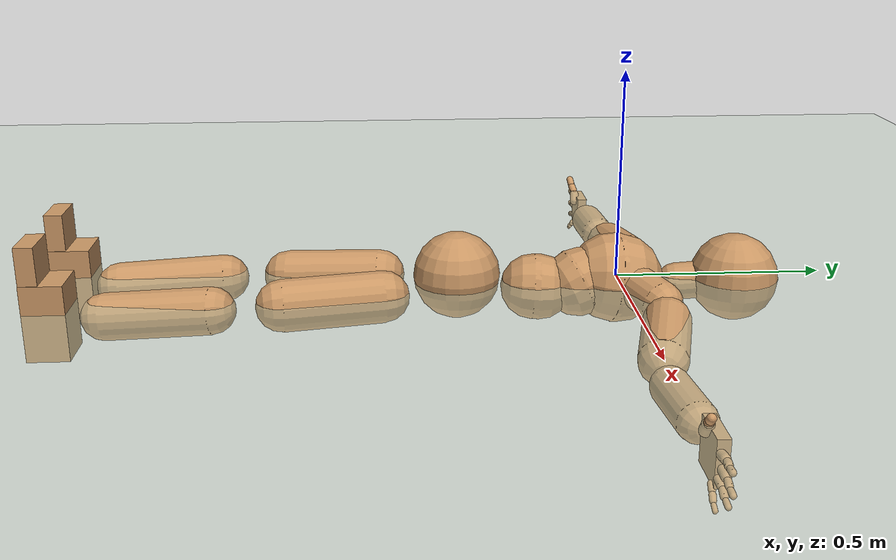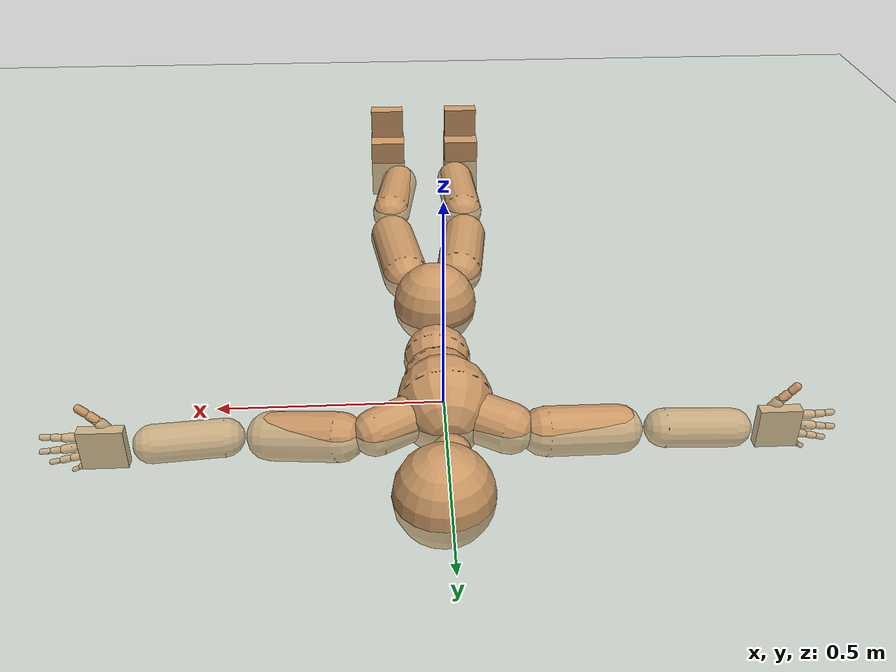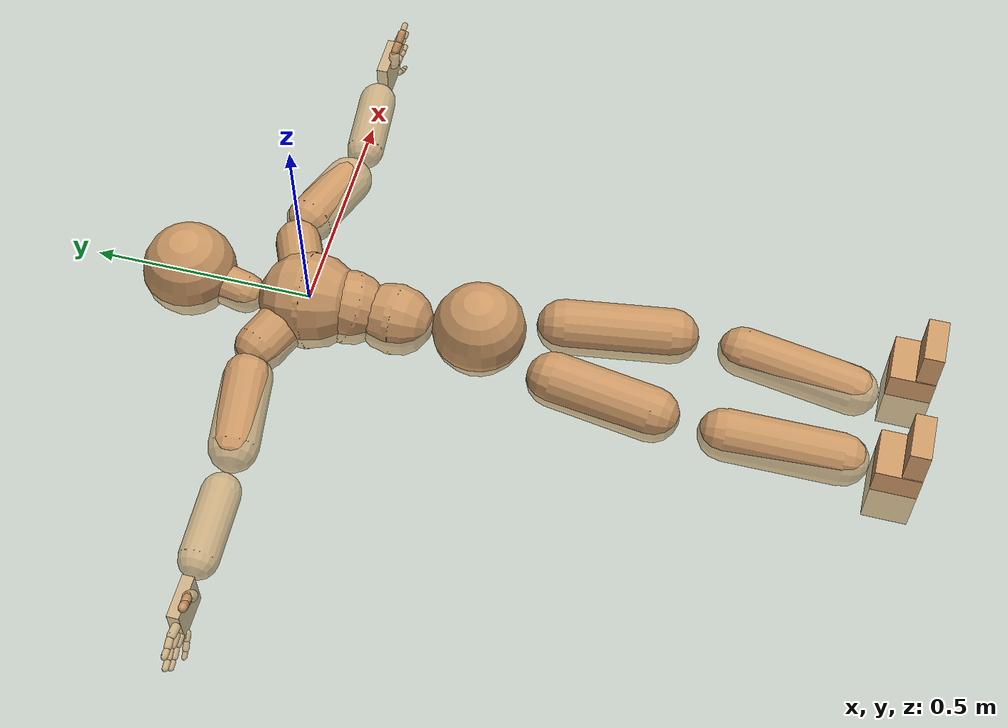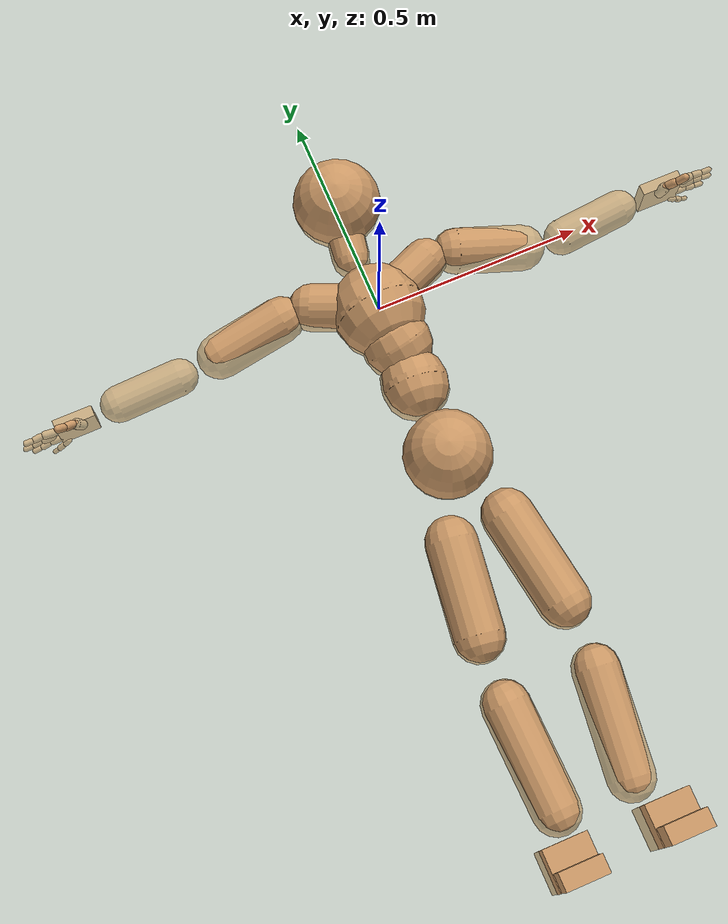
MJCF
<mujoco model="humanoid">
  <compiler coordinate="local"/>
  <default>
    <joint damping="0.0" armature="0.01" stiffness="0.0" limited="true"/>
    <geom conaffinity="1" condim="3" contype="7" margin="0.001" rgba="0.8 0.6 .4 1"/>
  </default>
  <asset>
    <texture type="skybox" builtin="gradient" rgb1=".4 .5 .6" rgb2="0 0 0" width="100" height="100"/>
    <texture builtin="flat" height="1278" mark="cross" markrgb="1 1 1" name="texgeom" random="0.01" rgb1="0.8 0.6 0.4" rgb2="0.8 0.6 0.4" type="cube" width="127"/>
    <texture builtin="checker" height="100" name="texplane" rgb1="0 0 0" rgb2="0.8 0.8 0.8" type="2d" width="100"/>
    <material name="MatPlane" reflectance="0.5" shininess="1" specular="1" texrepeat="60 60" texture="texplane"/>
    <material name="geom" texture="texgeom" texuniform="true"/>
  </asset>
  <worldbody>
    <light cutoff="100" diffuse="1 1 1" dir="-0 0 -1.3" directional="true" exponent="1" pos="0 0 1.3" specular=".1 .1 .1"/>
    <geom conaffinity="1" condim="3" name="floor" pos="0 0 0" rgba="0.8 0.9 0.8 1" size="100 100 .2" type="plane" material="MatPlane"/>
    <body name="Pelvis" pos="0.0029 -0.3901 0.0123">
      <freejoint name="Pelvis"/>
      <geom type="sphere" contype="1" conaffinity="1" density="4629.6296296296305" size="0.1045" pos="0.0000 0.0000 0.0000" name="Pelvis"/>
      <body name="L_Hip" pos="0.0585 -0.0991 -0.0253">
        <joint name="L_Hip_x" type="hinge" pos="0 0 0" axis="1 0 0" user="250 2.5 1 500 10 2" armature="0.01" range="-90.0000 90.0000" damping="0" stiffness="0"/>
        <joint name="L_Hip_y" type="hinge" pos="0 0 0" axis="0 1 0" user="250 2.5 1 500 10 2" armature="0.01" range="-90.0000 90.0000" damping="0" stiffness="0"/>
        <joint name="L_Hip_z" type="hinge" pos="0 0 0" axis="0 0 1" user="250 2.5 1 500 10 2" armature="0.01" range="-90.0000 90.0000" damping="0" stiffness="0"/>
        <geom type="capsule" contype="1" conaffinity="1" density="2040.816327" fromto="0.0119 -0.0780 -0.0009 0.0478 -0.3119 -0.0036" size="0.0619" name="L_Hip"/>
        <body name="L_Knee" pos="0.0597 -0.3899 -0.0044">
          <joint name="L_Knee_x" type="hinge" pos="0 0 0" axis="1 0 0" user="250 2.5 1 500 10 2" armature="0.01" range="-180.0000 180.0000" damping="0" stiffness="0"/>
          <joint name="L_Knee_y" type="hinge" pos="0 0 0" axis="0 1 0" user="250 2.5 1 500 10 2" armature="0.01" range="-5.6250 5.6250" damping="0" stiffness="0"/>
          <joint name="L_Knee_z" type="hinge" pos="0 0 0" axis="0 0 1" user="250 2.5 1 500 10 2" armature="0.01" range="-5.6250 5.6250" damping="0" stiffness="0"/>
          <geom type="capsule" contype="1" conaffinity="1" density="1234.567901" fromto="-0.0090 -0.0831 -0.0065 -0.0359 -0.3326 -0.0258" size="0.0558" name="L_Knee"/>
          <body name="L_Ankle" pos="-0.0449 -0.4157 -0.0323">
            <joint name="L_Ankle_x" type="hinge" pos="0 0 0" axis="1 0 0" user="150 2.5 1 500 10 2" armature="0.01" range="-90.0000 90.0000" damping="0" stiffness="0"/>
            <joint name="L_Ankle_y" type="hinge" pos="0 0 0" axis="0 1 0" user="150 2.5 1 500 10 2" armature="0.01" range="-90.0000 90.0000" damping="0" stiffness="0"/>
            <joint name="L_Ankle_z" type="hinge" pos="0 0 0" axis="0 0 1" user="150 2.5 1 500 10 2" armature="0.01" range="-90.0000 90.0000" damping="0" stiffness="0"/>
            <geom type="box" density="454.944855" pos="0.0439 -0.0300 0.0250" size="0.0533 0.049 0.0909" quat="1.0000 0.0000 0.0000 0.0000" name="L_Ankle"/>
            <body name="L_Toe" pos="0.0508 -0.0606 0.1257">
              <joint name="L_Toe_x" type="hinge" pos="0 0 0" axis="1 0 0" user="150 1 1 500 1 1" armature="0.01" range="-90.0000 90.0000" damping="0" stiffness="0"/>
              <joint name="L_Toe_y" type="hinge" pos="0 0 0" axis="0 1 0" user="150 1 1 500 1 1" armature="0.01" range="-45.0000 45.0000" damping="0" stiffness="0"/>
              <joint name="L_Toe_z" type="hinge" pos="0 0 0" axis="0 0 1" user="150 1 1 500 1 1" armature="0.01" range="-45.0000 45.0000" damping="0" stiffness="0"/>
              <geom type="box" density="422.823769" pos="-0.0069 0.0035 0.0274" size="0.051 0.0218 0.0529" quat="1.0000 0.0000 0.0000 0.0000" name="L_Toe"/>
            </body>
          </body>
        </body>
      </body>
      <body name="R_Hip" pos="-0.0633 -0.1121 -0.019">
        <joint name="R_Hip_x" type="hinge" pos="0 0 0" axis="1 0 0" user="250 2.5 1 500 10 2" armature="0.01" range="-90.0000 90.0000" damping="0" stiffness="0"/>
        <joint name="R_Hip_y" type="hinge" pos="0 0 0" axis="0 1 0" user="250 2.5 1 500 10 2" armature="0.01" range="-90.0000 90.0000" damping="0" stiffness="0"/>
        <joint name="R_Hip_z" type="hinge" pos="0 0 0" axis="0 0 1" user="250 2.5 1 500 10 2" armature="0.01" range="-90.0000 90.0000" damping="0" stiffness="0"/>
        <geom type="capsule" contype="1" conaffinity="1" density="2040.816327" fromto="-0.0098 -0.0742 -0.0027 -0.0390 -0.2970 -0.0106" size="0.0612" name="R_Hip"/>
        <body name="R_Knee" pos="-0.0488 -0.3712 -0.0133">
          <joint name="R_Knee_x" type="hinge" pos="0 0 0" axis="1 0 0" user="250 2.5 1 500 10 2" armature="0.01" range="-180.0000 180.0000" damping="0" stiffness="0"/>
          <joint name="R_Knee_y" type="hinge" pos="0 0 0" axis="0 1 0" user="250 2.5 1 500 10 2" armature="0.01" range="-5.6250 5.6250" damping="0" stiffness="0"/>
          <joint name="R_Knee_z" type="hinge" pos="0 0 0" axis="0 0 1" user="250 2.5 1 500 10 2" armature="0.01" range="-5.6250 5.6250" damping="0" stiffness="0"/>
          <geom type="capsule" contype="1" conaffinity="1" density="1234.567901" fromto="0.0030 -0.0848 -0.0040 0.0120 -0.3392 -0.0160" size="0.0575" name="R_Knee"/>
          <body name="R_Ankle" pos="0.015 -0.424 -0.02">
            <joint name="R_Ankle_x" type="hinge" pos="0 0 0" axis="1 0 0" user="150 1 1 500 10 2" armature="0.01" range="-90.0000 90.0000" damping="0" stiffness="0"/>
            <joint name="R_Ankle_y" type="hinge" pos="0 0 0" axis="0 1 0" user="150 1 1 500 10 2" armature="0.01" range="-90.0000 90.0000" damping="0" stiffness="0"/>
            <joint name="R_Ankle_z" type="hinge" pos="0 0 0" axis="0 0 1" user="150 1 1 500 10 2" armature="0.01" range="-90.0000 90.0000" damping="0" stiffness="0"/>
            <geom type="box" density="454.941528" pos="-0.0259 -0.0273 0.0153" size="0.0533 0.049 0.0909" quat="1.0000 0.0000 0.0000 0.0000" name="R_Ankle"/>
            <body name="R_Toe" pos="-0.0413 -0.0607 0.1264">
              <joint name="R_Toe_x" type="hinge" pos="0 0 0" axis="1 0 0" user="150 1 1 500 1 1" armature="0.01" range="-90.0000 90.0000" damping="0" stiffness="0"/>
              <joint name="R_Toe_y" type="hinge" pos="0 0 0" axis="0 1 0" user="150 1 1 500 1 1" armature="0.01" range="-45.0000 45.0000" damping="0" stiffness="0"/>
              <joint name="R_Toe_z" type="hinge" pos="0 0 0" axis="0 0 1" user="150 1 1 500 1 1" armature="0.01" range="-45.0000 45.0000" damping="0" stiffness="0"/>
              <geom type="box" density="422.820186" pos="0.0154 0.0063 0.0169" size="0.051 0.0218 0.0529" quat="1.0000 0.0000 0.0000 0.0000" name="R_Toe"/>
            </body>
          </body>
        </body>
      </body>
      <body name="Torso" pos="-0.003 0.1187 -0.0312">
        <joint name="Torso_x" type="hinge" pos="0 0 0" axis="1 0 0" user="500 5 1 500 10 2" armature="0.01" range="-60.0000 60.0000" damping="0" stiffness="0"/>
        <joint name="Torso_y" type="hinge" pos="0 0 0" axis="0 1 0" user="500 5 1 500 10 2" armature="0.01" range="-60.0000 60.0000" damping="0" stiffness="0"/>
        <joint name="Torso_z" type="hinge" pos="0 0 0" axis="0 0 1" user="500 5 1 500 10 2" armature="0.01" range="-60.0000 60.0000" damping="0" stiffness="0"/>
        <geom type="capsule" contype="1" conaffinity="1" density="2040.816327" fromto="0.0050 0.0673 -0.0032 0.0061 0.0822 -0.0039" size="0.0797" name="Torso"/>
        <body name="Spine" pos="0.0111 0.1495 -0.0071">
          <joint name="Spine_x" type="hinge" pos="0 0 0" axis="1 0 0" user="500 5 1 500 10 2" armature="0.01" range="-60.0000 60.0000" damping="0" stiffness="0"/>
          <joint name="Spine_y" type="hinge" pos="0 0 0" axis="0 1 0" user="500 5 1 500 10 2" armature="0.01" range="-60.0000 60.0000" damping="0" stiffness="0"/>
          <joint name="Spine_z" type="hinge" pos="0 0 0" axis="0 0 1" user="500 5 1 500 10 2" armature="0.01" range="-60.0000 60.0000" damping="0" stiffness="0"/>
          <geom type="capsule" contype="1" conaffinity="1" density="2040.816327" fromto="-0.0053 0.0270 0.0123 -0.0065 0.0330 0.0150" size="0.0835" name="Spine"/>
          <body name="Chest" pos="-0.0119 0.06 0.0273">
            <joint name="Chest_x" type="hinge" pos="0 0 0" axis="1 0 0" user="500 5 1 500 10 2" armature="0.01" range="-60.0000 60.0000" damping="0" stiffness="0"/>
            <joint name="Chest_y" type="hinge" pos="0 0 0" axis="0 1 0" user="500 5 1 500 10 2" armature="0.01" range="-60.0000 60.0000" damping="0" stiffness="0"/>
            <joint name="Chest_z" type="hinge" pos="0 0 0" axis="0 0 1" user="500 5 1 500 10 2" armature="0.01" range="-60.0000 60.0000" damping="0" stiffness="0"/>
            <geom type="capsule" contype="1" conaffinity="1" density="2040.816327" fromto="-0.0025 0.0537 -0.0065 -0.0030 0.0656 -0.0079" size="0.1091" name="Chest"/>
            <body name="Neck" pos="-0.0136 0.1769 -0.028">
              <joint name="Neck_x" type="hinge" pos="0 0 0" axis="1 0 0" user="150 1 1 250 50 4" armature="0.01" range="-180.0000 180.0000" damping="0" stiffness="0"/>
              <joint name="Neck_y" type="hinge" pos="0 0 0" axis="0 1 0" user="150 1 1 250 50 4" armature="0.01" range="-180.0000 180.0000" damping="0" stiffness="0"/>
              <joint name="Neck_z" type="hinge" pos="0 0 0" axis="0 0 1" user="150 1 1 250 50 4" armature="0.01" range="-180.0000 180.0000" damping="0" stiffness="0"/>
              <geom type="capsule" contype="1" conaffinity="1" density="1000" fromto="0.0054 0.0345 0.0044 0.0215 0.1378 0.0176" size="0.0455" name="Neck"/>
              <body name="Head" pos="0.0269 0.1723 0.022">
                <joint name="Head_x" type="hinge" pos="0 0 0" axis="1 0 0" user="150 1 1 250 50 4" armature="0.01" range="-90.0000 90.0000" damping="0" stiffness="0"/>
                <joint name="Head_y" type="hinge" pos="0 0 0" axis="0 1 0" user="150 1 1 250 50 4" armature="0.01" range="-90.0000 90.0000" damping="0" stiffness="0"/>
                <joint name="Head_z" type="hinge" pos="0 0 0" axis="0 0 1" user="150 1 1 250 50 4" armature="0.01" range="-90.0000 90.0000" damping="0" stiffness="0"/>
                <geom type="sphere" contype="1" conaffinity="1" density="1000" size="0.1058" pos="0.0000 0.0000 0.0000" name="Head"/>
              </body>
            </body>
            <body name="L_Thorax" pos="0.0483 0.091 -0.0045">
              <joint name="L_Thorax_x" type="hinge" pos="0 0 0" axis="1 0 0" user="200 2 1 500 50 4" armature="0.01" range="-180.0000 180.0000" damping="0" stiffness="0"/>
              <joint name="L_Thorax_y" type="hinge" pos="0 0 0" axis="0 1 0" user="200 2 1 500 50 4" armature="0.01" range="-180.0000 180.0000" damping="0" stiffness="0"/>
              <joint name="L_Thorax_z" type="hinge" pos="0 0 0" axis="0 0 1" user="200 2 1 500 50 4" armature="0.01" range="-180.0000 180.0000" damping="0" stiffness="0"/>
              <geom type="capsule" contype="1" conaffinity="1" density="1000" fromto="0.0258 0.0117 -0.0032 0.1033 0.0468 -0.0128" size="0.0522" name="L_Thorax"/>
              <body name="L_Shoulder" pos="0.1291 0.0585 -0.016">
                <joint name="L_Shoulder_x" type="hinge" pos="0 0 0" axis="1 0 0" user="200 2 1 500 50 4" armature="0.01" range="-180.0000 180.0000" damping="0" stiffness="0"/>
                <joint name="L_Shoulder_y" type="hinge" pos="0 0 0" axis="0 1 0" user="200 2 1 500 50 4" armature="0.01" range="-180.0000 180.0000" damping="0" stiffness="0"/>
                <joint name="L_Shoulder_z" type="hinge" pos="0 0 0" axis="0 0 1" user="200 2 1 500 50 4" armature="0.01" range="-180.0000 180.0000" damping="0" stiffness="0"/>
                <geom type="capsule" contype="1" conaffinity="1" density="1000" fromto="0.0516 -0.0147 -0.0092 0.2063 -0.0588 -0.0367" size="0.0555" name="L_Shoulder"/>
                <body name="L_Elbow" pos="0.2579 -0.0735 -0.0458">
                  <joint name="L_Elbow_x" type="hinge" pos="0 0 0" axis="1 0 0" user="150 1 1 150 10 2" armature="0.01" range="-720.0000 720.0000" damping="0" stiffness="0"/>
                  <joint name="L_Elbow_y" type="hinge" pos="0 0 0" axis="0 1 0" user="150 1 1 150 10 2" armature="0.01" range="-720.0000 720.0000" damping="0" stiffness="0"/>
                  <joint name="L_Elbow_z" type="hinge" pos="0 0 0" axis="0 0 1" user="150 1 1 150 10 2" armature="0.01" range="-720.0000 720.0000" damping="0" stiffness="0"/>
                  <geom type="capsule" contype="1" conaffinity="1" density="1000" fromto="0.0524 0.0048 0.0002 0.2096 0.0193 0.0008" size="0.0437" name="L_Elbow"/>
                  <body name="L_Wrist" pos="0.262 0.0241 0.001">
                    <joint name="L_Wrist_x" type="hinge" pos="0 0 0" axis="1 0 0" user="100 1 1 150 1 1" armature="0.01" range="-180.0000 180.0000" damping="0" stiffness="0"/>
                    <joint name="L_Wrist_y" type="hinge" pos="0 0 0" axis="0 1 0" user="100 1 1 150 1 1" armature="0.01" range="-180.0000 180.0000" damping="0" stiffness="0"/>
                    <joint name="L_Wrist_z" type="hinge" pos="0 0 0" axis="0 0 1" user="100 1 1 150 1 1" armature="0.01" range="-180.0000 180.0000" damping="0" stiffness="0"/>
                    <geom type="box" density="1217.913374" pos="0.0553 -0.0014 -0.0027" size="0.051 0.0133 0.0498" quat="1.0000 0.0000 0.0000 0.0000" name="L_Wrist"/>
                    <body name="L_Index1" pos="0.1074 -0.0082 0.0214">
                      <joint name="L_Index1_x" type="hinge" pos="0 0 0" axis="1 0 0" user="100 10 1 150" armature="0.01" range="-180.0000 180.0000" damping="0" stiffness="0"/>
                      <joint name="L_Index1_y" type="hinge" pos="0 0 0" axis="0 1 0" user="100 10 1 150" armature="0.01" range="-180.0000 180.0000" damping="0" stiffness="0"/>
                      <joint name="L_Index1_z" type="hinge" pos="0 0 0" axis="0 0 1" user="100 10 1 150" armature="0.01" range="-180.0000 180.0000" damping="0" stiffness="0"/>
                      <geom type="capsule" contype="1" conaffinity="1" density="1000" fromto="0.0067 0.0005 0.0006 0.0267 0.0020 0.0024" size="0.0099" name="L_Index1"/>
                      <body name="L_Index2" pos="0.0333 0.0025 0.003">
                        <joint name="L_Index2_x" type="hinge" pos="0 0 0" axis="1 0 0" user="100 10 1 150" armature="0.01" range="-180.0000 180.0000" damping="0" stiffness="0"/>
                        <joint name="L_Index2_y" type="hinge" pos="0 0 0" axis="0 1 0" user="100 10 1 150" armature="0.01" range="-180.0000 180.0000" damping="0" stiffness="0"/>
                        <joint name="L_Index2_z" type="hinge" pos="0 0 0" axis="0 0 1" user="100 10 1 150" armature="0.01" range="-180.0000 180.0000" damping="0" stiffness="0"/>
                        <geom type="capsule" contype="1" conaffinity="1" density="1000" fromto="0.0047 -0.0005 -0.0000 0.0188 -0.0020 -0.0002" size="0.0082" name="L_Index2"/>
                        <body name="L_Index3" pos="0.0235 -0.0025 -0.0002">
                          <joint name="L_Index3_x" type="hinge" pos="0 0 0" axis="1 0 0" user="100 10 1 150" armature="0.01" range="-180.0000 180.0000" damping="0" stiffness="0"/>
                          <joint name="L_Index3_y" type="hinge" pos="0 0 0" axis="0 1 0" user="100 10 1 150" armature="0.01" range="-180.0000 180.0000" damping="0" stiffness="0"/>
                          <joint name="L_Index3_z" type="hinge" pos="0 0 0" axis="0 0 1" user="100 10 1 150" armature="0.01" range="-180.0000 180.0000" damping="0" stiffness="0"/>
                          <geom type="capsule" contype="1" conaffinity="1" density="1000" fromto="0.0051 -0.0001 0.0004 0.0204 -0.0004 0.0014" size="0.0069" name="L_Index3"/>
                        </body>
                      </body>
                    </body>
                    <body name="L_Middle1" pos="0.1154 -0.0057 -0.0039">
                      <joint name="L_Middle1_x" type="hinge" pos="0 0 0" axis="1 0 0" user="100 10 1 150" armature="0.01" range="-180.0000 180.0000" damping="0" stiffness="0"/>
                      <joint name="L_Middle1_y" type="hinge" pos="0 0 0" axis="0 1 0" user="100 10 1 150" armature="0.01" range="-180.0000 180.0000" damping="0" stiffness="0"/>
                      <joint name="L_Middle1_z" type="hinge" pos="0 0 0" axis="0 0 1" user="100 10 1 150" armature="0.01" range="-180.0000 180.0000" damping="0" stiffness="0"/>
                      <geom type="capsule" contype="1" conaffinity="1" density="1000" fromto="0.0064 0.0002 -0.0008 0.0256 0.0007 -0.0033" size="0.0102" name="L_Middle1"/>
                      <body name="L_Middle2" pos="0.032 0.0009 -0.0042">
                        <joint name="L_Middle2_x" type="hinge" pos="0 0 0" axis="1 0 0" user="100 10 1 150" armature="0.01" range="-180.0000 180.0000" damping="0" stiffness="0"/>
                        <joint name="L_Middle2_y" type="hinge" pos="0 0 0" axis="0 1 0" user="100 10 1 150" armature="0.01" range="-180.0000 180.0000" damping="0" stiffness="0"/>
                        <joint name="L_Middle2_z" type="hinge" pos="0 0 0" axis="0 0 1" user="100 10 1 150" armature="0.01" range="-180.0000 180.0000" damping="0" stiffness="0"/>
                        <geom type="capsule" contype="1" conaffinity="1" density="1000" fromto="0.0049 -0.0005 -0.0009 0.0195 -0.0018 -0.0035" size="0.0075" name="L_Middle2"/>
                        <body name="L_Middle3" pos="0.0244 -0.0023 -0.0044">
                          <joint name="L_Middle3_x" type="hinge" pos="0 0 0" axis="1 0 0" user="100 10 1 150" armature="0.01" range="-180.0000 180.0000" damping="0" stiffness="0"/>
                          <joint name="L_Middle3_y" type="hinge" pos="0 0 0" axis="0 1 0" user="100 10 1 150" armature="0.01" range="-180.0000 180.0000" damping="0" stiffness="0"/>
                          <joint name="L_Middle3_z" type="hinge" pos="0 0 0" axis="0 0 1" user="100 10 1 150" armature="0.01" range="-180.0000 180.0000" damping="0" stiffness="0"/>
                          <geom type="capsule" contype="1" conaffinity="1" density="1000" fromto="0.0053 -0.0001 -0.0005 0.0211 -0.0002 -0.0019" size="0.0065" name="L_Middle3"/>
                        </body>
                      </body>
                    </body>
                    <body name="L_Pinky1" pos="0.0887 -0.0147 -0.0471">
                      <joint name="L_Pinky1_x" type="hinge" pos="0 0 0" axis="1 0 0" user="100 10 1 150" armature="0.01" range="-180.0000 180.0000" damping="0" stiffness="0"/>
                      <joint name="L_Pinky1_y" type="hinge" pos="0 0 0" axis="0 1 0" user="100 10 1 150" armature="0.01" range="-180.0000 180.0000" damping="0" stiffness="0"/>
                      <joint name="L_Pinky1_z" type="hinge" pos="0 0 0" axis="0 0 1" user="100 10 1 150" armature="0.01" range="-180.0000 180.0000" damping="0" stiffness="0"/>
                      <geom type="capsule" contype="1" conaffinity="1" density="1000" fromto="0.0033 -0.0003 -0.0025 0.0134 -0.0011 -0.0101" size="0.0072" name="L_Pinky1"/>
                      <body name="L_Pinky2" pos="0.0167 -0.0014 -0.0126">
                        <joint name="L_Pinky2_x" type="hinge" pos="0 0 0" axis="1 0 0" user="100 10 1 150" armature="0.01" range="-180.0000 180.0000" damping="0" stiffness="0"/>
                        <joint name="L_Pinky2_y" type="hinge" pos="0 0 0" axis="0 1 0" user="100 10 1 150" armature="0.01" range="-180.0000 180.0000" damping="0" stiffness="0"/>
                        <joint name="L_Pinky2_z" type="hinge" pos="0 0 0" axis="0 0 1" user="100 10 1 150" armature="0.01" range="-180.0000 180.0000" damping="0" stiffness="0"/>
                        <geom type="capsule" contype="1" conaffinity="1" density="1000" fromto="0.0033 -0.0004 -0.0023 0.0132 -0.0016 -0.0093" size="0.0069" name="L_Pinky2"/>
                        <body name="L_Pinky3" pos="0.0165 -0.002 -0.0116">
                          <joint name="L_Pinky3_x" type="hinge" pos="0 0 0" axis="1 0 0" user="100 10 1 150" armature="0.01" range="-180.0000 180.0000" damping="0" stiffness="0"/>
                          <joint name="L_Pinky3_y" type="hinge" pos="0 0 0" axis="0 1 0" user="100 10 1 150" armature="0.01" range="-180.0000 180.0000" damping="0" stiffness="0"/>
                          <joint name="L_Pinky3_z" type="hinge" pos="0 0 0" axis="0 0 1" user="100 10 1 150" armature="0.01" range="-180.0000 180.0000" damping="0" stiffness="0"/>
                          <geom type="capsule" contype="1" conaffinity="1" density="1000" fromto="0.0037 0.0000 -0.0019 0.0148 0.0000 -0.0077" size="0.0052" name="L_Pinky3"/>
                        </body>
                      </body>
                    </body>
                    <body name="L_Ring1" pos="0.1029 -0.0089 -0.0293">
                      <joint name="L_Ring1_x" type="hinge" pos="0 0 0" axis="1 0 0" user="100 10 1 150" armature="0.01" range="-180.0000 180.0000" damping="0" stiffness="0"/>
                      <joint name="L_Ring1_y" type="hinge" pos="0 0 0" axis="0 1 0" user="100 10 1 150" armature="0.01" range="-180.0000 180.0000" damping="0" stiffness="0"/>
                      <joint name="L_Ring1_z" type="hinge" pos="0 0 0" axis="0 0 1" user="100 10 1 150" armature="0.01" range="-180.0000 180.0000" damping="0" stiffness="0"/>
                      <geom type="capsule" contype="1" conaffinity="1" density="1000" fromto="0.0059 0.0003 -0.0011 0.0238 0.0013 -0.0044" size="0.0086" name="L_Ring1"/>
                      <body name="L_Ring2" pos="0.0297 0.0016 -0.0055">
                        <joint name="L_Ring2_x" type="hinge" pos="0 0 0" axis="1 0 0" user="100 10 1 150" armature="0.01" range="-180.0000 180.0000" damping="0" stiffness="0"/>
                        <joint name="L_Ring2_y" type="hinge" pos="0 0 0" axis="0 1 0" user="100 10 1 150" armature="0.01" range="-180.0000 180.0000" damping="0" stiffness="0"/>
                        <joint name="L_Ring2_z" type="hinge" pos="0 0 0" axis="0 0 1" user="100 10 1 150" armature="0.01" range="-180.0000 180.0000" damping="0" stiffness="0"/>
                        <geom type="capsule" contype="1" conaffinity="1" density="1000" fromto="0.0048 -0.0003 -0.0015 0.0191 -0.0014 -0.0059" size="0.0079" name="L_Ring2"/>
                        <body name="L_Ring3" pos="0.0239 -0.0017 -0.0074">
                          <joint name="L_Ring3_x" type="hinge" pos="0 0 0" axis="1 0 0" user="100 10 1 150" armature="0.01" range="-180.0000 180.0000" damping="0" stiffness="0"/>
                          <joint name="L_Ring3_y" type="hinge" pos="0 0 0" axis="0 1 0" user="100 10 1 150" armature="0.01" range="-180.0000 180.0000" damping="0" stiffness="0"/>
                          <joint name="L_Ring3_z" type="hinge" pos="0 0 0" axis="0 0 1" user="100 10 1 150" armature="0.01" range="-180.0000 180.0000" damping="0" stiffness="0"/>
                          <geom type="capsule" contype="1" conaffinity="1" density="1000" fromto="0.0052 0.0001 -0.0011 0.0207 0.0002 -0.0043" size="0.0061" name="L_Ring3"/>
                        </body>
                      </body>
                    </body>
                    <body name="L_Thumb1" pos="0.0425 -0.0194 0.0286">
                      <joint name="L_Thumb1_x" type="hinge" pos="0 0 0" axis="1 0 0" user="100 10 1 150" armature="0.01" range="-180.0000 180.0000" damping="0" stiffness="0"/>
                      <joint name="L_Thumb1_y" type="hinge" pos="0 0 0" axis="0 1 0" user="100 10 1 150" armature="0.01" range="-180.0000 180.0000" damping="0" stiffness="0"/>
                      <joint name="L_Thumb1_z" type="hinge" pos="0 0 0" axis="0 0 1" user="100 10 1 150" armature="0.01" range="-180.0000 180.0000" damping="0" stiffness="0"/>
                      <geom type="capsule" contype="1" conaffinity="1" density="1000" fromto="0.0036 0.0003 0.0054 0.0142 0.0011 0.0217" size="0.0131" name="L_Thumb1"/>
                      <body name="L_Thumb2" pos="0.0178 0.0013 0.0271">
                        <joint name="L_Thumb2_x" type="hinge" pos="0 0 0" axis="1 0 0" user="100 10 1 150" armature="0.01" range="-180.0000 180.0000" damping="0" stiffness="0"/>
                        <joint name="L_Thumb2_y" type="hinge" pos="0 0 0" axis="0 1 0" user="100 10 1 150" armature="0.01" range="-180.0000 180.0000" damping="0" stiffness="0"/>
                        <joint name="L_Thumb2_z" type="hinge" pos="0 0 0" axis="0 0 1" user="100 10 1 150" armature="0.01" range="-180.0000 180.0000" damping="0" stiffness="0"/>
                        <geom type="capsule" contype="1" conaffinity="1" density="1000" fromto="0.0043 -0.0011 0.0033 0.0172 -0.0044 0.0132" size="0.0104" name="L_Thumb2"/>
                        <body name="L_Thumb3" pos="0.0215 -0.0055 0.0165">
                          <joint name="L_Thumb3_x" type="hinge" pos="0 0 0" axis="1 0 0" user="100 10 1 150" armature="0.01" range="-180.0000 180.0000" damping="0" stiffness="0"/>
                          <joint name="L_Thumb3_y" type="hinge" pos="0 0 0" axis="0 1 0" user="100 10 1 150" armature="0.01" range="-180.0000 180.0000" damping="0" stiffness="0"/>
                          <joint name="L_Thumb3_z" type="hinge" pos="0 0 0" axis="0 0 1" user="100 10 1 150" armature="0.01" range="-180.0000 180.0000" damping="0" stiffness="0"/>
                          <geom type="capsule" contype="1" conaffinity="1" density="1000" fromto="0.0047 -0.0007 0.0037 0.0188 -0.0028 0.0148" size="0.0094" name="L_Thumb3"/>
                        </body>
                      </body>
                    </body>
                  </body>
                </body>
              </body>
            </body>
            <body name="R_Thorax" pos="-0.0511 0.0901 -0.0108">
              <joint name="R_Thorax_x" type="hinge" pos="0 0 0" axis="1 0 0" user="200 2 1 150 10 2" armature="0.01" range="-180.0000 180.0000" damping="0" stiffness="0"/>
              <joint name="R_Thorax_y" type="hinge" pos="0 0 0" axis="0 1 0" user="200 2 1 150 10 2" armature="0.01" range="-180.0000 180.0000" damping="0" stiffness="0"/>
              <joint name="R_Thorax_z" type="hinge" pos="0 0 0" axis="0 0 1" user="200 2 1 150 10 2" armature="0.01" range="-180.0000 180.0000" damping="0" stiffness="0"/>
              <geom type="capsule" contype="1" conaffinity="1" density="1000" fromto="-0.0223 0.0108 -0.0027 -0.0893 0.0433 -0.0106" size="0.0573" name="R_Thorax"/>
              <body name="R_Shoulder" pos="-0.1116 0.0542 -0.0133">
                <joint name="R_Shoulder_x" type="hinge" pos="0 0 0" axis="1 0 0" user="200 2 1 250 10 2" armature="0.01" range="-180.0000 180.0000" damping="0" stiffness="0"/>
                <joint name="R_Shoulder_y" type="hinge" pos="0 0 0" axis="0 1 0" user="200 2 1 250 10 2" armature="0.01" range="-180.0000 180.0000" damping="0" stiffness="0"/>
                <joint name="R_Shoulder_z" type="hinge" pos="0 0 0" axis="0 0 1" user="200 2 1 250 10 2" armature="0.01" range="-180.0000 180.0000" damping="0" stiffness="0"/>
                <geom type="capsule" contype="1" conaffinity="1" density="1000" fromto="-0.0552 -0.0070 -0.0058 -0.2208 -0.0282 -0.0232" size="0.0554" name="R_Shoulder"/>
                <body name="R_Elbow" pos="-0.276 -0.0352 -0.029">
                  <joint name="R_Elbow_x" type="hinge" pos="0 0 0" axis="1 0 0" user="150 1 1 150 10 2" armature="0.01" range="-720.0000 720.0000" damping="0" stiffness="0"/>
                  <joint name="R_Elbow_y" type="hinge" pos="0 0 0" axis="0 1 0" user="150 1 1 150 10 2" armature="0.01" range="-720.0000 720.0000" damping="0" stiffness="0"/>
                  <joint name="R_Elbow_z" type="hinge" pos="0 0 0" axis="0 0 1" user="150 1 1 150 10 2" armature="0.01" range="-720.0000 720.0000" damping="0" stiffness="0"/>
                  <geom type="capsule" contype="1" conaffinity="1" density="1000" fromto="-0.0517 -0.0011 -0.0025 -0.2070 -0.0045 -0.0100" size="0.044" name="R_Elbow"/>
                  <body name="R_Wrist" pos="-0.2587 -0.0057 -0.0124">
                    <joint name="R_Wrist_x" type="hinge" pos="0 0 0" axis="1 0 0" user="100 1 1 150 1 1" armature="0.01" range="-180.0000 180.0000" damping="0" stiffness="0"/>
                    <joint name="R_Wrist_y" type="hinge" pos="0 0 0" axis="0 1 0" user="100 1 1 150 1 1" armature="0.01" range="-180.0000 180.0000" damping="0" stiffness="0"/>
                    <joint name="R_Wrist_z" type="hinge" pos="0 0 0" axis="0 0 1" user="100 1 1 150 1 1" armature="0.01" range="-180.0000 180.0000" damping="0" stiffness="0"/>
                    <geom type="box" density="1243.677563" pos="-0.0566 -0.0047 -0.0026" size="0.0481 0.0133 0.0498" quat="1.0000 0.0000 0.0000 0.0000" name="R_Wrist"/>
                    <body name="R_Index1" pos="-0.1054 -0.0115 0.0215">
                      <joint name="R_Index1_x" type="hinge" pos="0 0 0" axis="1 0 0" user="100 10 1 150" armature="0.01" range="-180.0000 180.0000" damping="0" stiffness="0"/>
                      <joint name="R_Index1_y" type="hinge" pos="0 0 0" axis="0 1 0" user="100 10 1 150" armature="0.01" range="-180.0000 180.0000" damping="0" stiffness="0"/>
                      <joint name="R_Index1_z" type="hinge" pos="0 0 0" axis="0 0 1" user="100 10 1 150" armature="0.01" range="-180.0000 180.0000" damping="0" stiffness="0"/>
                      <geom type="capsule" contype="1" conaffinity="1" density="1000" fromto="-0.0067 0.0005 0.0006 -0.0267 0.0020 0.0024" size="0.0099" name="R_Index1"/>
                      <body name="R_Index2" pos="-0.0333 0.0025 0.003">
                        <joint name="R_Index2_x" type="hinge" pos="0 0 0" axis="1 0 0" user="100 10 1 150" armature="0.01" range="-180.0000 180.0000" damping="0" stiffness="0"/>
                        <joint name="R_Index2_y" type="hinge" pos="0 0 0" axis="0 1 0" user="100 10 1 150" armature="0.01" range="-180.0000 180.0000" damping="0" stiffness="0"/>
                        <joint name="R_Index2_z" type="hinge" pos="0 0 0" axis="0 0 1" user="100 10 1 150" armature="0.01" range="-180.0000 180.0000" damping="0" stiffness="0"/>
                        <geom type="capsule" contype="1" conaffinity="1" density="1000" fromto="-0.0047 -0.0005 -0.0000 -0.0188 -0.0020 -0.0002" size="0.0082" name="R_Index2"/>
                        <body name="R_Index3" pos="-0.0235 -0.0025 -0.0002">
                          <joint name="R_Index3_x" type="hinge" pos="0 0 0" axis="1 0 0" user="100 10 1 150" armature="0.01" range="-180.0000 180.0000" damping="0" stiffness="0"/>
                          <joint name="R_Index3_y" type="hinge" pos="0 0 0" axis="0 1 0" user="100 10 1 150" armature="0.01" range="-180.0000 180.0000" damping="0" stiffness="0"/>
                          <joint name="R_Index3_z" type="hinge" pos="0 0 0" axis="0 0 1" user="100 10 1 150" armature="0.01" range="-180.0000 180.0000" damping="0" stiffness="0"/>
                          <geom type="capsule" contype="1" conaffinity="1" density="1000" fromto="-0.0043 -0.0001 0.0004 -0.0172 -0.0004 0.0014" size="0.0072" name="R_Index3"/>
                        </body>
                      </body>
                    </body>
                    <body name="R_Middle1" pos="-0.1134 -0.009 -0.0038">
                      <joint name="R_Middle1_x" type="hinge" pos="0 0 0" axis="1 0 0" user="100 10 1 150" armature="0.01" range="-180.0000 180.0000" damping="0" stiffness="0"/>
                      <joint name="R_Middle1_y" type="hinge" pos="0 0 0" axis="0 1 0" user="100 10 1 150" armature="0.01" range="-180.0000 180.0000" damping="0" stiffness="0"/>
                      <joint name="R_Middle1_z" type="hinge" pos="0 0 0" axis="0 0 1" user="100 10 1 150" armature="0.01" range="-180.0000 180.0000" damping="0" stiffness="0"/>
                      <geom type="capsule" contype="1" conaffinity="1" density="1000" fromto="-0.0064 0.0002 -0.0008 -0.0256 0.0007 -0.0033" size="0.0102" name="R_Middle1"/>
                      <body name="R_Middle2" pos="-0.032 0.0009 -0.0042">
                        <joint name="R_Middle2_x" type="hinge" pos="0 0 0" axis="1 0 0" user="100 10 1 150" armature="0.01" range="-180.0000 180.0000" damping="0" stiffness="0"/>
                        <joint name="R_Middle2_y" type="hinge" pos="0 0 0" axis="0 1 0" user="100 10 1 150" armature="0.01" range="-180.0000 180.0000" damping="0" stiffness="0"/>
                        <joint name="R_Middle2_z" type="hinge" pos="0 0 0" axis="0 0 1" user="100 10 1 150" armature="0.01" range="-180.0000 180.0000" damping="0" stiffness="0"/>
                        <geom type="capsule" contype="1" conaffinity="1" density="1000" fromto="-0.0049 -0.0005 -0.0009 -0.0195 -0.0018 -0.0035" size="0.0075" name="R_Middle2"/>
                        <body name="R_Middle3" pos="-0.0244 -0.0023 -0.0044">
                          <joint name="R_Middle3_x" type="hinge" pos="0 0 0" axis="1 0 0" user="100 10 1 150" armature="0.01" range="-180.0000 180.0000" damping="0" stiffness="0"/>
                          <joint name="R_Middle3_y" type="hinge" pos="0 0 0" axis="0 1 0" user="100 10 1 150" armature="0.01" range="-180.0000 180.0000" damping="0" stiffness="0"/>
                          <joint name="R_Middle3_z" type="hinge" pos="0 0 0" axis="0 0 1" user="100 10 1 150" armature="0.01" range="-180.0000 180.0000" damping="0" stiffness="0"/>
                          <geom type="capsule" contype="1" conaffinity="1" density="1000" fromto="-0.0045 -0.0001 -0.0005 -0.0179 -0.0002 -0.0019" size="0.0068" name="R_Middle3"/>
                        </body>
                      </body>
                    </body>
                    <body name="R_Pinky1" pos="-0.0868 -0.018 -0.0469">
                      <joint name="R_Pinky1_x" type="hinge" pos="0 0 0" axis="1 0 0" user="100 10 1 150" armature="0.01" range="-180.0000 180.0000" damping="0" stiffness="0"/>
                      <joint name="R_Pinky1_y" type="hinge" pos="0 0 0" axis="0 1 0" user="100 10 1 150" armature="0.01" range="-180.0000 180.0000" damping="0" stiffness="0"/>
                      <joint name="R_Pinky1_z" type="hinge" pos="0 0 0" axis="0 0 1" user="100 10 1 150" armature="0.01" range="-180.0000 180.0000" damping="0" stiffness="0"/>
                      <geom type="capsule" contype="1" conaffinity="1" density="1000" fromto="-0.0033 -0.0003 -0.0025 -0.0134 -0.0011 -0.0101" size="0.0072" name="R_Pinky1"/>
                      <body name="R_Pinky2" pos="-0.0167 -0.0014 -0.0126">
                        <joint name="R_Pinky2_x" type="hinge" pos="0 0 0" axis="1 0 0" user="100 10 1 150" armature="0.01" range="-180.0000 180.0000" damping="0" stiffness="0"/>
                        <joint name="R_Pinky2_y" type="hinge" pos="0 0 0" axis="0 1 0" user="100 10 1 150" armature="0.01" range="-180.0000 180.0000" damping="0" stiffness="0"/>
                        <joint name="R_Pinky2_z" type="hinge" pos="0 0 0" axis="0 0 1" user="100 10 1 150" armature="0.01" range="-180.0000 180.0000" damping="0" stiffness="0"/>
                        <geom type="capsule" contype="1" conaffinity="1" density="1000" fromto="-0.0033 -0.0004 -0.0023 -0.0132 -0.0016 -0.0093" size="0.0069" name="R_Pinky2"/>
                        <body name="R_Pinky3" pos="-0.0165 -0.002 -0.0116">
                          <joint name="R_Pinky3_x" type="hinge" pos="0 0 0" axis="1 0 0" user="100 10 1 150" armature="0.01" range="-180.0000 180.0000" damping="0" stiffness="0"/>
                          <joint name="R_Pinky3_y" type="hinge" pos="0 0 0" axis="0 1 0" user="100 10 1 150" armature="0.01" range="-180.0000 180.0000" damping="0" stiffness="0"/>
                          <joint name="R_Pinky3_z" type="hinge" pos="0 0 0" axis="0 0 1" user="100 10 1 150" armature="0.01" range="-180.0000 180.0000" damping="0" stiffness="0"/>
                          <geom type="capsule" contype="1" conaffinity="1" density="1000" fromto="-0.0029 0.0000 -0.0019 -0.0116 0.0000 -0.0077" size="0.0055" name="R_Pinky3"/>
                        </body>
                      </body>
                    </body>
                    <body name="R_Ring1" pos="-0.101 -0.0122 -0.0292">
                      <joint name="R_Ring1_x" type="hinge" pos="0 0 0" axis="1 0 0" user="100 10 1 150" armature="0.01" range="-180.0000 180.0000" damping="0" stiffness="0"/>
                      <joint name="R_Ring1_y" type="hinge" pos="0 0 0" axis="0 1 0" user="100 10 1 150" armature="0.01" range="-180.0000 180.0000" damping="0" stiffness="0"/>
                      <joint name="R_Ring1_z" type="hinge" pos="0 0 0" axis="0 0 1" user="100 10 1 150" armature="0.01" range="-180.0000 180.0000" damping="0" stiffness="0"/>
                      <geom type="capsule" contype="1" conaffinity="1" density="1000" fromto="-0.0059 0.0003 -0.0011 -0.0238 0.0013 -0.0044" size="0.0086" name="R_Ring1"/>
                      <body name="R_Ring2" pos="-0.0297 0.0016 -0.0055">
                        <joint name="R_Ring2_x" type="hinge" pos="0 0 0" axis="1 0 0" user="100 10 1 150" armature="0.01" range="-180.0000 180.0000" damping="0" stiffness="0"/>
                        <joint name="R_Ring2_y" type="hinge" pos="0 0 0" axis="0 1 0" user="100 10 1 150" armature="0.01" range="-180.0000 180.0000" damping="0" stiffness="0"/>
                        <joint name="R_Ring2_z" type="hinge" pos="0 0 0" axis="0 0 1" user="100 10 1 150" armature="0.01" range="-180.0000 180.0000" damping="0" stiffness="0"/>
                        <geom type="capsule" contype="1" conaffinity="1" density="1000" fromto="-0.0048 -0.0003 -0.0015 -0.0191 -0.0014 -0.0059" size="0.0079" name="R_Ring2"/>
                        <body name="R_Ring3" pos="-0.0239 -0.0017 -0.0074">
                          <joint name="R_Ring3_x" type="hinge" pos="0 0 0" axis="1 0 0" user="100 10 1 150" armature="0.01" range="-180.0000 180.0000" damping="0" stiffness="0"/>
                          <joint name="R_Ring3_y" type="hinge" pos="0 0 0" axis="0 1 0" user="100 10 1 150" armature="0.01" range="-180.0000 180.0000" damping="0" stiffness="0"/>
                          <joint name="R_Ring3_z" type="hinge" pos="0 0 0" axis="0 0 1" user="100 10 1 150" armature="0.01" range="-180.0000 180.0000" damping="0" stiffness="0"/>
                          <geom type="capsule" contype="1" conaffinity="1" density="1000" fromto="-0.0044 0.0001 -0.0011 -0.0175 0.0002 -0.0043" size="0.0064" name="R_Ring3"/>
                        </body>
                      </body>
                    </body>
                    <body name="R_Thumb1" pos="-0.0405 -0.0227 0.0288">
                      <joint name="R_Thumb1_x" type="hinge" pos="0 0 0" axis="1 0 0" user="100 10 1 150" armature="0.01" range="-180.0000 180.0000" damping="0" stiffness="0"/>
                      <joint name="R_Thumb1_y" type="hinge" pos="0 0 0" axis="0 1 0" user="100 10 1 150" armature="0.01" range="-180.0000 180.0000" damping="0" stiffness="0"/>
                      <joint name="R_Thumb1_z" type="hinge" pos="0 0 0" axis="0 0 1" user="100 10 1 150" armature="0.01" range="-180.0000 180.0000" damping="0" stiffness="0"/>
                      <geom type="capsule" contype="1" conaffinity="1" density="1000" fromto="-0.0036 0.0003 0.0054 -0.0142 0.0011 0.0217" size="0.0131" name="R_Thumb1"/>
                      <body name="R_Thumb2" pos="-0.0178 0.0013 0.0271">
                        <joint name="R_Thumb2_x" type="hinge" pos="0 0 0" axis="1 0 0" user="100 10 1 150" armature="0.01" range="-180.0000 180.0000" damping="0" stiffness="0"/>
                        <joint name="R_Thumb2_y" type="hinge" pos="0 0 0" axis="0 1 0" user="100 10 1 150" armature="0.01" range="-180.0000 180.0000" damping="0" stiffness="0"/>
                        <joint name="R_Thumb2_z" type="hinge" pos="0 0 0" axis="0 0 1" user="100 10 1 150" armature="0.01" range="-180.0000 180.0000" damping="0" stiffness="0"/>
                        <geom type="capsule" contype="1" conaffinity="1" density="1000" fromto="-0.0043 -0.0011 0.0033 -0.0172 -0.0044 0.0132" size="0.0104" name="R_Thumb2"/>
                        <body name="R_Thumb3" pos="-0.0215 -0.0054 0.0165">
                          <joint name="R_Thumb3_x" type="hinge" pos="0 0 0" axis="1 0 0" user="100 10 1 150" armature="0.01" range="-180.0000 180.0000" damping="0" stiffness="0"/>
                          <joint name="R_Thumb3_y" type="hinge" pos="0 0 0" axis="0 1 0" user="100 10 1 150" armature="0.01" range="-180.0000 180.0000" damping="0" stiffness="0"/>
                          <joint name="R_Thumb3_z" type="hinge" pos="0 0 0" axis="0 0 1" user="100 10 1 150" armature="0.01" range="-180.0000 180.0000" damping="0" stiffness="0"/>
                          <geom type="capsule" contype="1" conaffinity="1" density="1000" fromto="-0.0039 -0.0007 0.0037 -0.0156 -0.0028 0.0148" size="0.0096" name="R_Thumb3"/>
                        </body>
                      </body>
                    </body>
                  </body>
                </body>
              </body>
            </body>
          </body>
        </body>
      </body>
    </body>
  </worldbody>
  <actuator>
    <motor name="L_Hip_x" joint="L_Hip_x" gear="1"/>
    <motor name="L_Hip_y" joint="L_Hip_y" gear="1"/>
    <motor name="L_Hip_z" joint="L_Hip_z" gear="1"/>
    <motor name="L_Knee_x" joint="L_Knee_x" gear="1"/>
    <motor name="L_Knee_y" joint="L_Knee_y" gear="1"/>
    <motor name="L_Knee_z" joint="L_Knee_z" gear="1"/>
    <motor name="L_Ankle_x" joint="L_Ankle_x" gear="1"/>
    <motor name="L_Ankle_y" joint="L_Ankle_y" gear="1"/>
    <motor name="L_Ankle_z" joint="L_Ankle_z" gear="1"/>
    <motor name="L_Toe_x" joint="L_Toe_x" gear="1"/>
    <motor name="L_Toe_y" joint="L_Toe_y" gear="1"/>
    <motor name="L_Toe_z" joint="L_Toe_z" gear="1"/>
    <motor name="R_Hip_x" joint="R_Hip_x" gear="1"/>
    <motor name="R_Hip_y" joint="R_Hip_y" gear="1"/>
    <motor name="R_Hip_z" joint="R_Hip_z" gear="1"/>
    <motor name="R_Knee_x" joint="R_Knee_x" gear="1"/>
    <motor name="R_Knee_y" joint="R_Knee_y" gear="1"/>
    <motor name="R_Knee_z" joint="R_Knee_z" gear="1"/>
    <motor name="R_Ankle_x" joint="R_Ankle_x" gear="1"/>
    <motor name="R_Ankle_y" joint="R_Ankle_y" gear="1"/>
    <motor name="R_Ankle_z" joint="R_Ankle_z" gear="1"/>
    <motor name="R_Toe_x" joint="R_Toe_x" gear="1"/>
    <motor name="R_Toe_y" joint="R_Toe_y" gear="1"/>
    <motor name="R_Toe_z" joint="R_Toe_z" gear="1"/>
    <motor name="Torso_x" joint="Torso_x" gear="1"/>
    <motor name="Torso_y" joint="Torso_y" gear="1"/>
    <motor name="Torso_z" joint="Torso_z" gear="1"/>
    <motor name="Spine_x" joint="Spine_x" gear="1"/>
    <motor name="Spine_y" joint="Spine_y" gear="1"/>
    <motor name="Spine_z" joint="Spine_z" gear="1"/>
    <motor name="Chest_x" joint="Chest_x" gear="1"/>
    <motor name="Chest_y" joint="Chest_y" gear="1"/>
    <motor name="Chest_z" joint="Chest_z" gear="1"/>
    <motor name="Neck_x" joint="Neck_x" gear="1"/>
    <motor name="Neck_y" joint="Neck_y" gear="1"/>
    <motor name="Neck_z" joint="Neck_z" gear="1"/>
    <motor name="Head_x" joint="Head_x" gear="1"/>
    <motor name="Head_y" joint="Head_y" gear="1"/>
    <motor name="Head_z" joint="Head_z" gear="1"/>
    <motor name="L_Thorax_x" joint="L_Thorax_x" gear="1"/>
    <motor name="L_Thorax_y" joint="L_Thorax_y" gear="1"/>
    <motor name="L_Thorax_z" joint="L_Thorax_z" gear="1"/>
    <motor name="L_Shoulder_x" joint="L_Shoulder_x" gear="1"/>
    <motor name="L_Shoulder_y" joint="L_Shoulder_y" gear="1"/>
    <motor name="L_Shoulder_z" joint="L_Shoulder_z" gear="1"/>
    <motor name="L_Elbow_x" joint="L_Elbow_x" gear="1"/>
    <motor name="L_Elbow_y" joint="L_Elbow_y" gear="1"/>
    <motor name="L_Elbow_z" joint="L_Elbow_z" gear="1"/>
    <motor name="L_Wrist_x" joint="L_Wrist_x" gear="1"/>
    <motor name="L_Wrist_y" joint="L_Wrist_y" gear="1"/>
    <motor name="L_Wrist_z" joint="L_Wrist_z" gear="1"/>
    <motor name="L_Index1_x" joint="L_Index1_x" gear="1"/>
    <motor name="L_Index1_y" joint="L_Index1_y" gear="1"/>
    <motor name="L_Index1_z" joint="L_Index1_z" gear="1"/>
    <motor name="L_Index2_x" joint="L_Index2_x" gear="1"/>
    <motor name="L_Index2_y" joint="L_Index2_y" gear="1"/>
    <motor name="L_Index2_z" joint="L_Index2_z" gear="1"/>
    <motor name="L_Index3_x" joint="L_Index3_x" gear="1"/>
    <motor name="L_Index3_y" joint="L_Index3_y" gear="1"/>
    <motor name="L_Index3_z" joint="L_Index3_z" gear="1"/>
    <motor name="L_Middle1_x" joint="L_Middle1_x" gear="1"/>
    <motor name="L_Middle1_y" joint="L_Middle1_y" gear="1"/>
    <motor name="L_Middle1_z" joint="L_Middle1_z" gear="1"/>
    <motor name="L_Middle2_x" joint="L_Middle2_x" gear="1"/>
    <motor name="L_Middle2_y" joint="L_Middle2_y" gear="1"/>
    <motor name="L_Middle2_z" joint="L_Middle2_z" gear="1"/>
    <motor name="L_Middle3_x" joint="L_Middle3_x" gear="1"/>
    <motor name="L_Middle3_y" joint="L_Middle3_y" gear="1"/>
    <motor name="L_Middle3_z" joint="L_Middle3_z" gear="1"/>
    <motor name="L_Pinky1_x" joint="L_Pinky1_x" gear="1"/>
    <motor name="L_Pinky1_y" joint="L_Pinky1_y" gear="1"/>
    <motor name="L_Pinky1_z" joint="L_Pinky1_z" gear="1"/>
    <motor name="L_Pinky2_x" joint="L_Pinky2_x" gear="1"/>
    <motor name="L_Pinky2_y" joint="L_Pinky2_y" gear="1"/>
    <motor name="L_Pinky2_z" joint="L_Pinky2_z" gear="1"/>
    <motor name="L_Pinky3_x" joint="L_Pinky3_x" gear="1"/>
    <motor name="L_Pinky3_y" joint="L_Pinky3_y" gear="1"/>
    <motor name="L_Pinky3_z" joint="L_Pinky3_z" gear="1"/>
    <motor name="L_Ring1_x" joint="L_Ring1_x" gear="1"/>
    <motor name="L_Ring1_y" joint="L_Ring1_y" gear="1"/>
    <motor name="L_Ring1_z" joint="L_Ring1_z" gear="1"/>
    <motor name="L_Ring2_x" joint="L_Ring2_x" gear="1"/>
    <motor name="L_Ring2_y" joint="L_Ring2_y" gear="1"/>
    <motor name="L_Ring2_z" joint="L_Ring2_z" gear="1"/>
    <motor name="L_Ring3_x" joint="L_Ring3_x" gear="1"/>
    <motor name="L_Ring3_y" joint="L_Ring3_y" gear="1"/>
    <motor name="L_Ring3_z" joint="L_Ring3_z" gear="1"/>
    <motor name="L_Thumb1_x" joint="L_Thumb1_x" gear="1"/>
    <motor name="L_Thumb1_y" joint="L_Thumb1_y" gear="1"/>
    <motor name="L_Thumb1_z" joint="L_Thumb1_z" gear="1"/>
    <motor name="L_Thumb2_x" joint="L_Thumb2_x" gear="1"/>
    <motor name="L_Thumb2_y" joint="L_Thumb2_y" gear="1"/>
    <motor name="L_Thumb2_z" joint="L_Thumb2_z" gear="1"/>
    <motor name="L_Thumb3_x" joint="L_Thumb3_x" gear="1"/>
    <motor name="L_Thumb3_y" joint="L_Thumb3_y" gear="1"/>
    <motor name="L_Thumb3_z" joint="L_Thumb3_z" gear="1"/>
    <motor name="R_Thorax_x" joint="R_Thorax_x" gear="1"/>
    <motor name="R_Thorax_y" joint="R_Thorax_y" gear="1"/>
    <motor name="R_Thorax_z" joint="R_Thorax_z" gear="1"/>
    <motor name="R_Shoulder_x" joint="R_Shoulder_x" gear="1"/>
    <motor name="R_Shoulder_y" joint="R_Shoulder_y" gear="1"/>
    <motor name="R_Shoulder_z" joint="R_Shoulder_z" gear="1"/>
    <motor name="R_Elbow_x" joint="R_Elbow_x" gear="1"/>
    <motor name="R_Elbow_y" joint="R_Elbow_y" gear="1"/>
    <motor name="R_Elbow_z" joint="R_Elbow_z" gear="1"/>
    <motor name="R_Wrist_x" joint="R_Wrist_x" gear="1"/>
    <motor name="R_Wrist_y" joint="R_Wrist_y" gear="1"/>
    <motor name="R_Wrist_z" joint="R_Wrist_z" gear="1"/>
    <motor name="R_Index1_x" joint="R_Index1_x" gear="1"/>
    <motor name="R_Index1_y" joint="R_Index1_y" gear="1"/>
    <motor name="R_Index1_z" joint="R_Index1_z" gear="1"/>
    <motor name="R_Index2_x" joint="R_Index2_x" gear="1"/>
    <motor name="R_Index2_y" joint="R_Index2_y" gear="1"/>
    <motor name="R_Index2_z" joint="R_Index2_z" gear="1"/>
    <motor name="R_Index3_x" joint="R_Index3_x" gear="1"/>
    <motor name="R_Index3_y" joint="R_Index3_y" gear="1"/>
    <motor name="R_Index3_z" joint="R_Index3_z" gear="1"/>
    <motor name="R_Middle1_x" joint="R_Middle1_x" gear="1"/>
    <motor name="R_Middle1_y" joint="R_Middle1_y" gear="1"/>
    <motor name="R_Middle1_z" joint="R_Middle1_z" gear="1"/>
    <motor name="R_Middle2_x" joint="R_Middle2_x" gear="1"/>
    <motor name="R_Middle2_y" joint="R_Middle2_y" gear="1"/>
    <motor name="R_Middle2_z" joint="R_Middle2_z" gear="1"/>
    <motor name="R_Middle3_x" joint="R_Middle3_x" gear="1"/>
    <motor name="R_Middle3_y" joint="R_Middle3_y" gear="1"/>
    <motor name="R_Middle3_z" joint="R_Middle3_z" gear="1"/>
    <motor name="R_Pinky1_x" joint="R_Pinky1_x" gear="1"/>
    <motor name="R_Pinky1_y" joint="R_Pinky1_y" gear="1"/>
    <motor name="R_Pinky1_z" joint="R_Pinky1_z" gear="1"/>
    <motor name="R_Pinky2_x" joint="R_Pinky2_x" gear="1"/>
    <motor name="R_Pinky2_y" joint="R_Pinky2_y" gear="1"/>
    <motor name="R_Pinky2_z" joint="R_Pinky2_z" gear="1"/>
    <motor name="R_Pinky3_x" joint="R_Pinky3_x" gear="1"/>
    <motor name="R_Pinky3_y" joint="R_Pinky3_y" gear="1"/>
    <motor name="R_Pinky3_z" joint="R_Pinky3_z" gear="1"/>
    <motor name="R_Ring1_x" joint="R_Ring1_x" gear="1"/>
    <motor name="R_Ring1_y" joint="R_Ring1_y" gear="1"/>
    <motor name="R_Ring1_z" joint="R_Ring1_z" gear="1"/>
    <motor name="R_Ring2_x" joint="R_Ring2_x" gear="1"/>
    <motor name="R_Ring2_y" joint="R_Ring2_y" gear="1"/>
    <motor name="R_Ring2_z" joint="R_Ring2_z" gear="1"/>
    <motor name="R_Ring3_x" joint="R_Ring3_x" gear="1"/>
    <motor name="R_Ring3_y" joint="R_Ring3_y" gear="1"/>
    <motor name="R_Ring3_z" joint="R_Ring3_z" gear="1"/>
    <motor name="R_Thumb1_x" joint="R_Thumb1_x" gear="1"/>
    <motor name="R_Thumb1_y" joint="R_Thumb1_y" gear="1"/>
    <motor name="R_Thumb1_z" joint="R_Thumb1_z" gear="1"/>
    <motor name="R_Thumb2_x" joint="R_Thumb2_x" gear="1"/>
    <motor name="R_Thumb2_y" joint="R_Thumb2_y" gear="1"/>
    <motor name="R_Thumb2_z" joint="R_Thumb2_z" gear="1"/>
    <motor name="R_Thumb3_x" joint="R_Thumb3_x" gear="1"/>
    <motor name="R_Thumb3_y" joint="R_Thumb3_y" gear="1"/>
    <motor name="R_Thumb3_z" joint="R_Thumb3_z" gear="1"/>
  </actuator>
  <contact>
    <exclude body1="Torso" body2="Chest"/>
    <exclude body1="Head" body2="Chest"/>
    <exclude body1="R_Knee" body2="R_Toe"/>
    <exclude body1="R_Knee" body2="L_Ankle"/>
    <exclude body1="R_Knee" body2="L_Toe"/>
    <exclude body1="L_Knee" body2="L_Toe"/>
    <exclude body1="L_Knee" body2="R_Ankle"/>
    <exclude body1="L_Knee" body2="R_Toe"/>
    <exclude body1="L_Shoulder" body2="Chest"/>
    <exclude body1="R_Shoulder" body2="Chest"/>
  </contact>
  <sensor/>
  <size njmax="700" nconmax="700"/>
</mujoco>
